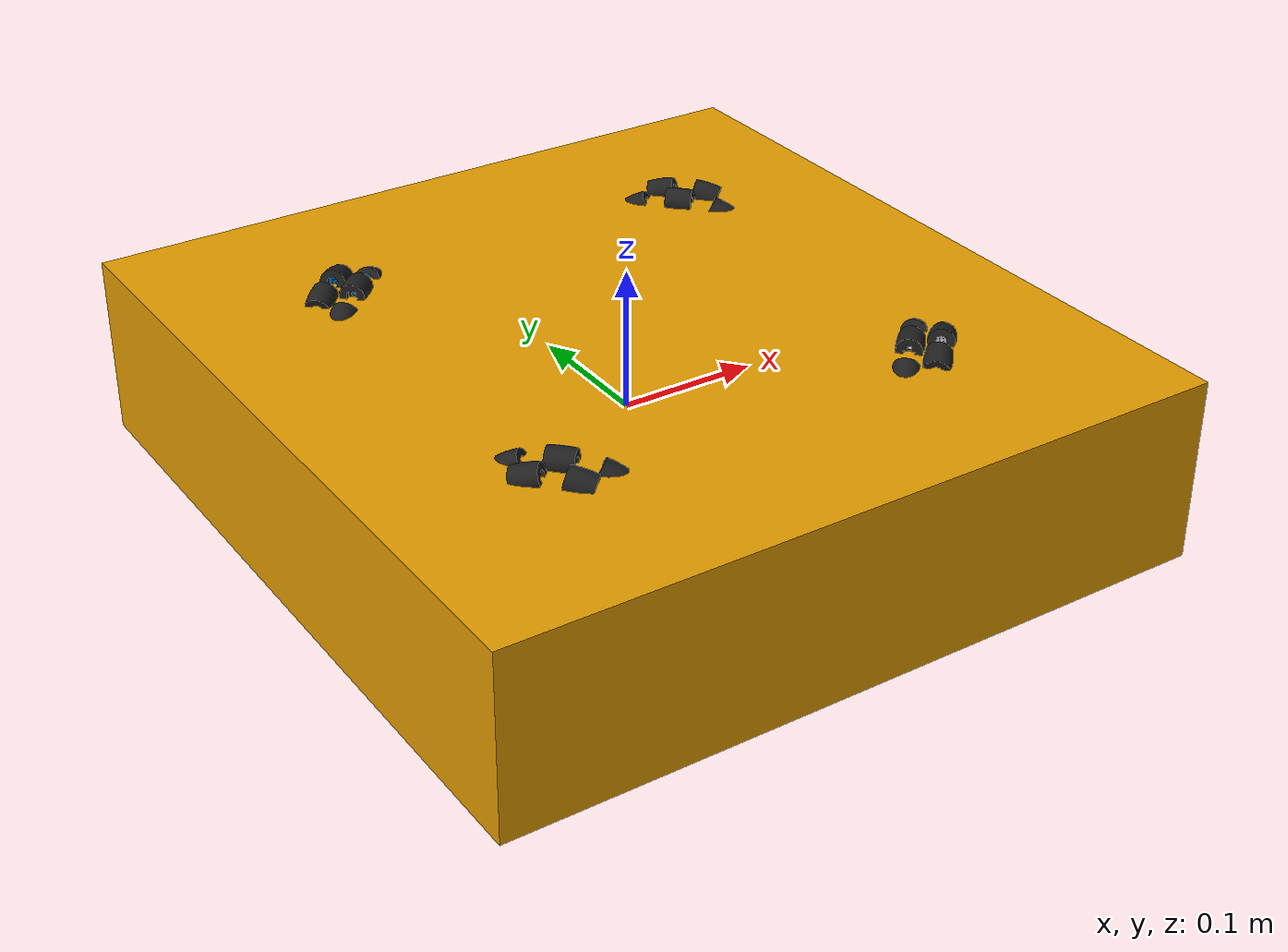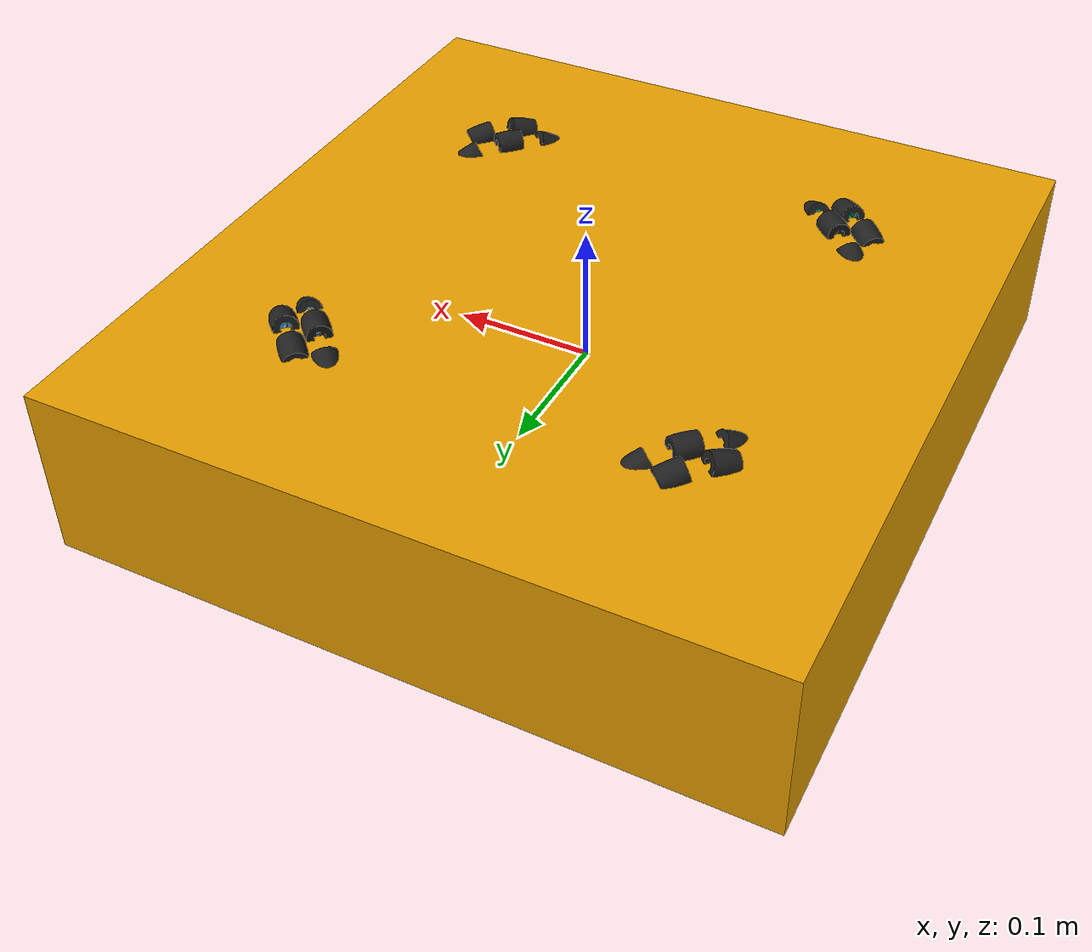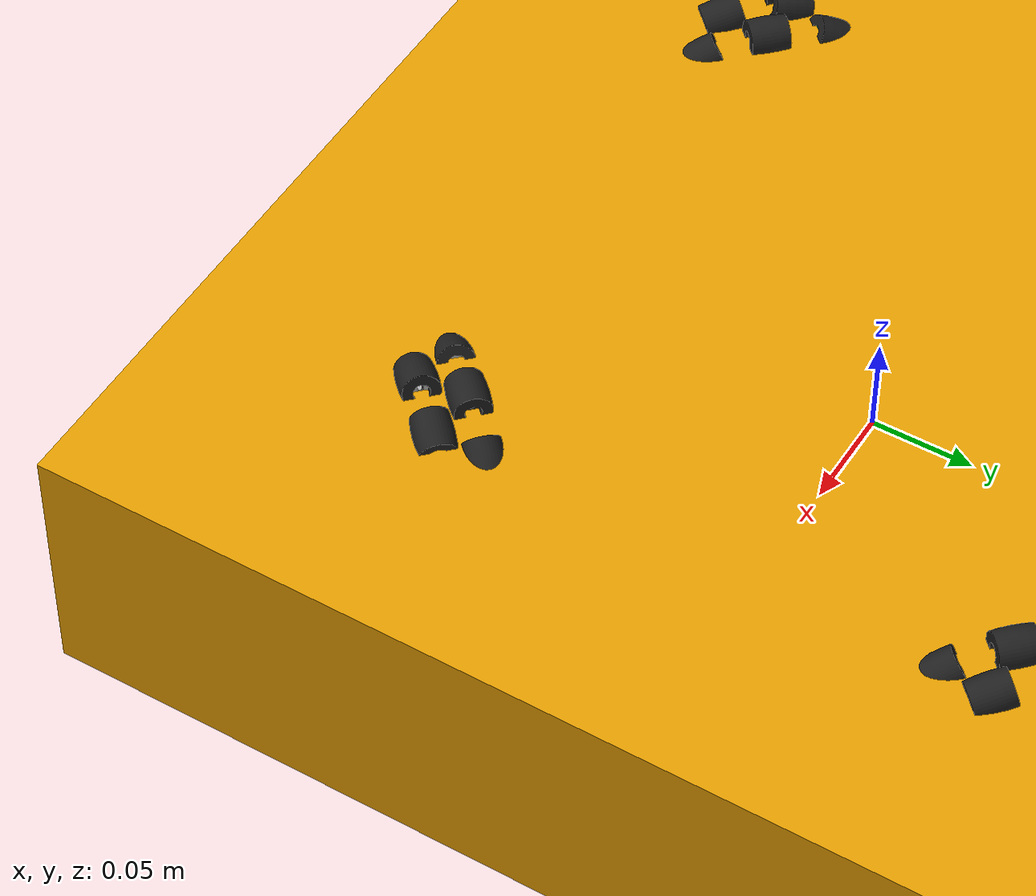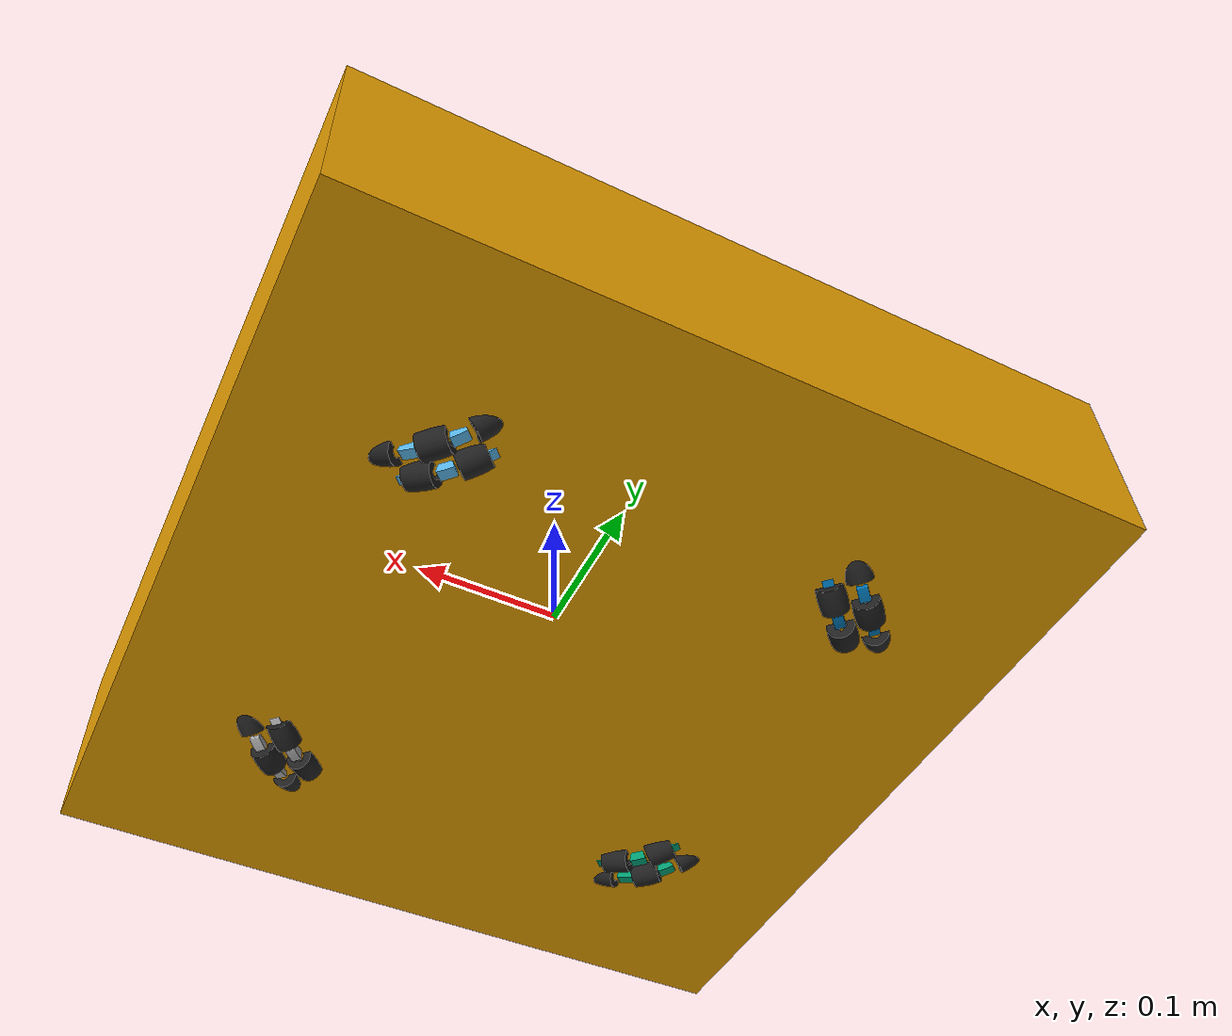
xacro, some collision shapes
<?xml version="1.0"?>
<robot xmlns:xacro="http://www.ros.org/wiki/xacro" name="standard6">

    <xacro:arg name="load_chassis" default="true"/>
    <xacro:arg name="load_gimbal" default="false"/>
    <xacro:arg name="load_shooter" default="false"/>
    <xacro:arg name="camera_link" default="camera_link"/>
    <xacro:arg name="camera_optical_frame" default="camera_optical_frame"/>
    <xacro:arg name="camera2_optical_frame" default="camera2_optical_frame"/>
    <xacro:arg name="roller_type" default="simple"/>
    <xacro:arg name="use_simulation" default="false"/>
    <xacro:arg name="roller_type" default="realistic"/>

    <xacro:if value="$(arg load_chassis)">
        <xacro:include filename="$(find rm2_description)/urdf/standard6/chassis.urdf.xacro"/>
        <xacro:chassis roller_type="$(arg roller_type)"/>

        <xacro:if value="$(arg load_gimbal)">
            <xacro:include filename="$(find rm2_description)/urdf/standard6/gimbal.urdf.xacro"/>
            <xacro:include filename="$(find rm2_description)/urdf/standard6/gimbal.transmission.urdf.xacro"/>
            <xacro:include filename="$(find rm2_description)/urdf/common/camera.urdf.xacro"/>
            <xacro:include filename="$(find rm2_description)/urdf/common/imu.urdf.xacro"/>
            <xacro:camera_sensor xyz="0.10285 0.0 0.039935" rpy="0 0 0" frame_id="$(arg camera_link)"
                                 camera_type="hk_camera"
                                 parent="pitch"
                                 camera_sim="$(arg use_simulation)"/>
            <xacro:camera_optical_frame xyz="0.10285 0.0 0.024935"
                                        rpy="-1.538075 0.0527913 -1.57700212"
                                        frame_id="$(arg camera_optical_frame)"
                                        parent="pitch"
                                        camera_sim="false"/>
            <xacro:camera_optical_frame xyz="0.10285 0.0 0.024935"
                                        rpy="-1.545333447075 0.0527913 -1.5837212"
                                        frame_id="$(arg camera2_optical_frame)"
                                        parent="pitch"
                                        camera_sim="false"/>
            <xacro:IMU connected_to="pitch" imu_name="gimbal_imu"
                       xyz="0.003967 0.0 0.068977"
                       rpy="-0.01 0.0 ${-pi/2}"/>
            <xacro:if value="$(arg load_shooter)">
                <xacro:include filename="$(find rm2_description)/urdf/standard6/shooter.urdf.xacro"/>
                <xacro:include filename="$(find rm2_description)/urdf/standard6/shooter.transmission.urdf.xacro"/>
            </xacro:if>
        </xacro:if>
    </xacro:if>

    <ros2_control name="RmEcatHardwareInterface" type="system">
        <hardware>
            <plugin>rm2_ecat_ros/RmEcatHardwareInterface</plugin>
        </hardware>

        <joint name="left_front_wheel_joint">
            <command_interface name="effort"/>
            <state_interface name="position"/>
            <state_interface name="velocity"/>
            <state_interface name="effort"/>
        </joint>

        <joint name="left_back_wheel_joint">
            <command_interface name="effort"/>
            <state_interface name="position"/>
            <state_interface name="velocity"/>
            <state_interface name="effort"/>
        </joint>

        <joint name="right_front_wheel_joint">
            <command_interface name="effort"/>
            <state_interface name="position"/>
            <state_interface name="velocity"/>
            <state_interface name="effort"/>
        </joint>

        <joint name="right_back_wheel_joint">
            <command_interface name="effort"/>
            <state_interface name="position"/>
            <state_interface name="velocity"/>
            <state_interface name="effort"/>
        </joint>

        <transmission name="left_front_wheel_trans">
            <type>transmission_interface/SimpleTransmission</type>
            <plugin>transmission_interface/SimpleTransmission</plugin>
            <joint name="left_front_wheel_joint" role="actuated">
                <mechanical_reduction>13</mechanical_reduction>
                <offset>0.0</offset>
            </joint>
            <actuator name="left_front_wheel_motor" role="actuated">
                <mechanical_reduction>1</mechanical_reduction>
            </actuator>
        </transmission>

        <transmission name="left_back_wheel_trans">
            <type>transmission_interface/SimpleTransmission</type>
            <plugin>transmission_interface/SimpleTransmission</plugin>
            <joint name="left_back_wheel_joint" role="actuated">
                <mechanical_reduction>13</mechanical_reduction>
                <offset>0.0</offset>
            </joint>
            <actuator name="left_back_wheel_motor" role="actuated">
                <mechanical_reduction>1</mechanical_reduction>
            </actuator>
        </transmission>

        <transmission name="right_front_wheel_trans">
            <type>transmission_interface/SimpleTransmission</type>
            <plugin>transmission_interface/SimpleTransmission</plugin>
            <joint name="right_front_wheel_joint" role="actuated">
                <mechanical_reduction>13</mechanical_reduction>
                <offset>0.0</offset>
            </joint>
            <actuator name="right_front_wheel_motor" role="actuated">
                <mechanical_reduction>1</mechanical_reduction>
            </actuator>
        </transmission>

        <transmission name="right_back_wheel_trans">
            <type>transmission_interface/SimpleTransmission</type>
            <plugin>transmission_interface/SimpleTransmission</plugin>
            <joint name="right_back_wheel_joint" role="actuated">
                <mechanical_reduction>13</mechanical_reduction>
                <offset>0.0</offset>
            </joint>
            <actuator name="right_back_wheel_motor" role="actuated">
                <mechanical_reduction>1</mechanical_reduction>
            </actuator>
        </transmission>

        <!--Other joint wait to added-->
    </ros2_control>

</robot>

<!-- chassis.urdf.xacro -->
<robot xmlns:xacro="http://www.ros.org/wiki/xacro">

    <xacro:include filename="$(find rm2_description)/urdf/common/omni_wheel.urdf.xacro"/>

    <!-- https://upload.wikimedia.org/wikipedia/commons/5/52/Wheelbase_and_Track.png -->
    <xacro:property name="chassis_radius" value="0.196"/>
    <xacro:property name="wheel_offset_z" value="0"/>

    <xacro:macro name="chassis" params="roller_type">

        <link name="base_link">
            <inertial>
                <mass value="12.177754"/>
                <origin xyz="-0.034182  0.009494  0.087537"/>
                <inertia ixx="1.966e-1" ixy="-5.842e-3" ixz="2.460e-2" iyy="2.474e-1"
                         iyz="4.544e-3" izz="3.510e-1"/>
            </inertial>
            <visual>
                <origin xyz="0 0 0" rpy="0 0 0"/>
                <geometry>
                    <mesh filename="package://rm2_description/meshes/standard/base.stl" scale="1 1 1"/>
                </geometry>
            </visual>
            <collision>
                <origin xyz="0 0 0" rpy="0 0 0"/>
                <geometry>
                    <box size="0.517211 0.539084 0.13"/>
                </geometry>
            </collision>
        </link>

        <xacro:omni_wheel prefix="left_front" connected_to="base_link"
                          wheel_x_offset="${chassis_radius/sqrt(2)}" wheel_y_offset="${chassis_radius/sqrt(2)}"
                          wheel_z_offset="${wheel_offset_z}" rotation_degree="${3*pi/4}" roller_type="${roller_type}"
                          max_effort="3.42" max_velocity="73"
        />
        <xacro:omni_wheel prefix="left_back" connected_to="base_link"
                          wheel_x_offset="${-chassis_radius/sqrt(2)}" wheel_y_offset="${chassis_radius/sqrt(2)}"
                          wheel_z_offset="${wheel_offset_z}" rotation_degree="${-3*pi/4}" roller_type="${roller_type}"
                          max_effort="3.42" max_velocity="73"
        />
        <xacro:omni_wheel prefix="right_front" connected_to="base_link"
                          wheel_x_offset="${chassis_radius/sqrt(2)}" wheel_y_offset="${-chassis_radius/sqrt(2)}"
                          wheel_z_offset="${wheel_offset_z}" rotation_degree="${pi/4}" roller_type="${roller_type}"
                          max_effort="3.42" max_velocity="73"
        />
        <xacro:omni_wheel prefix="right_back" connected_to="base_link"
                          wheel_x_offset="${-chassis_radius/sqrt(2)}" wheel_y_offset="${-chassis_radius/sqrt(2)}"
                          wheel_z_offset="${wheel_offset_z}" rotation_degree="${-pi/4}" roller_type="${roller_type}"
                          max_effort="3.42" max_velocity="73"
        />
        <xacro:wheel_transmission prefix="left_front" mechanical_reduction="13"/>
        <xacro:wheel_transmission prefix="left_back" mechanical_reduction="13"/>
        <xacro:wheel_transmission prefix="right_front" mechanical_reduction="13"/>
        <xacro:wheel_transmission prefix="right_back" mechanical_reduction="13"/>

    </xacro:macro>

</robot>

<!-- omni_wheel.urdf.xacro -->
<robot xmlns:xacro="http://www.ros.org/wiki/xacro" name="omni_wheel">

    <xacro:property name="wheel_radius" value="0.0762"/>
    <xacro:property name="roller_radius" value="0.009"/>

    <xacro:macro name="roller" params="prefix suffix theta roller_type">
        <xacro:if value="${suffix % 2 == 1}">
            <xacro:property name="joint_y_offset" value="0.009563"/>
        </xacro:if>
        <xacro:if value="${suffix % 2 == 0}">
            <xacro:property name="joint_y_offset" value="-0.009563"/>
        </xacro:if>

        <!--  link  -->
        <link name="${prefix}_roller_${suffix}">
            <xacro:if value="${roller_type=='simple'}">
                <visual>
                    <origin xyz="0 0 0" rpy="0 0 0"/>
                    <geometry>
                        <mesh filename="package://rm2_description/meshes/common/omni_roller.stl"
                              scale="1 1 1"/>
                    </geometry>
                </visual>
                <collision>
                    <geometry>
                        <sphere radius="${roller_radius}"/>
                    </geometry>
                </collision>
                <collision>
                    <origin rpy="0 1.57 0" xyz="0 0 0"/>
                    <geometry>
                        <cylinder length="19e-3" radius="8.6e-3"/>
                    </geometry>
                </collision>
            </xacro:if>
            <inertial>
                <mass value="0.0058"/>
                <inertia ixx="270.867e-9" ixy="1.547e-19" ixz="2.133e-19" iyy="291.412e-9" iyz="0.0" izz="291.412e-9"/>
            </inertial>
        </link>

        <joint name="${prefix}_roller_${suffix}_joint" type="continuous">
            <origin
                    xyz="${(wheel_radius-roller_radius)*cos(theta-pi/2)} ${joint_y_offset} ${(wheel_radius-roller_radius)*sin(theta-pi/2)}"
                    rpy="0 ${-theta} 0"/>
            <axis xyz="1 0 0"/>
            <dynamics damping="0.0" friction="0.001"/>
            <parent link="${prefix}_wheel"/>
            <child link="${prefix}_roller_${suffix}"/>
        </joint>

        <gazebo reference="${prefix}_roller_${suffix}">
            <mu1 value="2000.0"/>
            <mu2 value="2000.0"/>
            <kp value="1000000.0"/>
            <kd value="100.0"/>
            <material>Gazebo/Black</material>
        </gazebo>

    </xacro:macro>

    <xacro:macro name="omni_wheel"
                 params="prefix connected_to wheel_x_offset wheel_y_offset wheel_z_offset rotation_degree roller_type max_effort max_velocity">
        <!--  link  -->
        <link name="${prefix}_wheel">
            <visual>
                <geometry>
                    <mesh filename="package://rm2_description/meshes/common/omni_wheel.stl"
                          scale="1 1 1"/>
                </geometry>
            </visual>
            <inertial>
                <mass value="0.59"/>
                <inertia ixx="1.416e-3" ixy="0.0" ixz="0.0" iyy="2.749e-3" iyz="0.0" izz="1.416e-3"/>
            </inertial>
        </link>

        <!--  joint  -->
        <joint name="${prefix}_wheel_joint" type="continuous">
            <axis xyz="0 1 0"/>
            <origin xyz="${wheel_x_offset} ${wheel_y_offset} ${wheel_offset_z}" rpy="0 0 ${rotation_degree}"/>
            <!--      limit not work while type="continuous"-->
            <limit effort="${max_effort}" velocity="${max_velocity}" lower="-1e9" upper="1e9"/>
            <dynamics damping="0.0" friction="0.05"/>
            <parent link="${connected_to}"/>
            <child link="${prefix}_wheel"/>
        </joint>

        <xacro:unless value="${roller_type=='none'}">
            <xacro:roller prefix="${prefix}" suffix="0" theta="${0*pi/13}" roller_type="${roller_type}"/>
            <xacro:roller prefix="${prefix}" suffix="1" theta="${1*pi/13}" roller_type="${roller_type}"/>
            <xacro:roller prefix="${prefix}" suffix="2" theta="${2*pi/13}" roller_type="${roller_type}"/>
            <xacro:roller prefix="${prefix}" suffix="3" theta="${3*pi/13}" roller_type="${roller_type}"/>
            <xacro:roller prefix="${prefix}" suffix="4" theta="${4*pi/13}" roller_type="${roller_type}"/>
            <xacro:roller prefix="${prefix}" suffix="5" theta="${5*pi/13}" roller_type="${roller_type}"/>
            <xacro:roller prefix="${prefix}" suffix="6" theta="${6*pi/13}" roller_type="${roller_type}"/>
            <xacro:roller prefix="${prefix}" suffix="7" theta="${7*pi/13}" roller_type="${roller_type}"/>
            <xacro:roller prefix="${prefix}" suffix="8" theta="${8*pi/13}" roller_type="${roller_type}"/>
            <xacro:roller prefix="${prefix}" suffix="9" theta="${9*pi/13}" roller_type="${roller_type}"/>
            <xacro:roller prefix="${prefix}" suffix="10" theta="${10*pi/13}" roller_type="${roller_type}"/>
            <xacro:roller prefix="${prefix}" suffix="11" theta="${11*pi/13}" roller_type="${roller_type}"/>
            <xacro:roller prefix="${prefix}" suffix="12" theta="${12*pi/13}" roller_type="${roller_type}"/>
            <xacro:roller prefix="${prefix}" suffix="13" theta="${13*pi/13}" roller_type="${roller_type}"/>
            <xacro:roller prefix="${prefix}" suffix="14" theta="${14*pi/13}" roller_type="${roller_type}"/>
            <xacro:roller prefix="${prefix}" suffix="15" theta="${15*pi/13}" roller_type="${roller_type}"/>
            <xacro:roller prefix="${prefix}" suffix="16" theta="${16*pi/13}" roller_type="${roller_type}"/>
            <xacro:roller prefix="${prefix}" suffix="17" theta="${17*pi/13}" roller_type="${roller_type}"/>
            <xacro:roller prefix="${prefix}" suffix="18" theta="${18*pi/13}" roller_type="${roller_type}"/>
            <xacro:roller prefix="${prefix}" suffix="19" theta="${19*pi/13}" roller_type="${roller_type}"/>
            <xacro:roller prefix="${prefix}" suffix="20" theta="${20*pi/13}" roller_type="${roller_type}"/>
            <xacro:roller prefix="${prefix}" suffix="21" theta="${21*pi/13}" roller_type="${roller_type}"/>
            <xacro:roller prefix="${prefix}" suffix="22" theta="${22*pi/13}" roller_type="${roller_type}"/>
            <xacro:roller prefix="${prefix}" suffix="23" theta="${23*pi/13}" roller_type="${roller_type}"/>
            <xacro:roller prefix="${prefix}" suffix="24" theta="${24*pi/13}" roller_type="${roller_type}"/>
            <xacro:roller prefix="${prefix}" suffix="25" theta="${25*pi/13}" roller_type="${roller_type}"/>
        </xacro:unless>

    </xacro:macro>

    <xacro:macro name="wheel_transmission" params="prefix mechanical_reduction">
        <transmission name="${prefix}_wheel_trans">
            <type>transmission_interface/SimpleTransmission</type>
            <plugin>transmission_interface/SimpleTransmission</plugin>
            <joint name="${prefix}_wheel_joint" role="actuated">
                <mechanical_reduction>${mechanical_reduction}</mechanical_reduction>
                <offset>0.0</offset>
            </joint>
            <actuator name="${prefix}_wheel_motor" role="actuated">
                <mechanical_reduction>${mechanical_reduction}</mechanical_reduction>
            </actuator>
        </transmission>
    </xacro:macro>

</robot>
